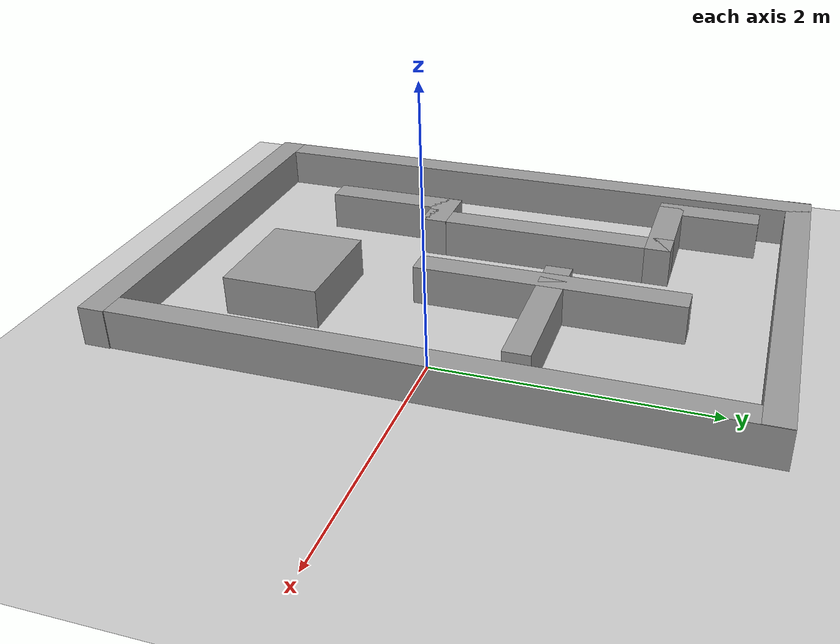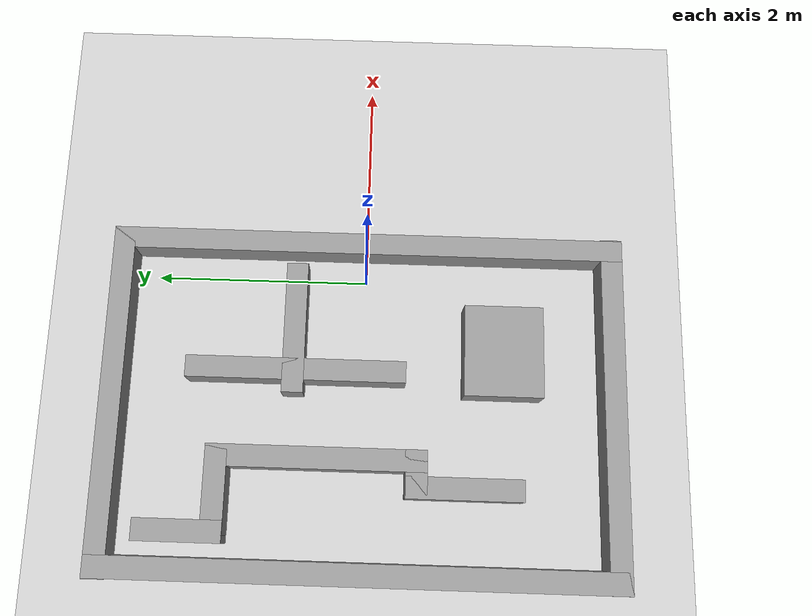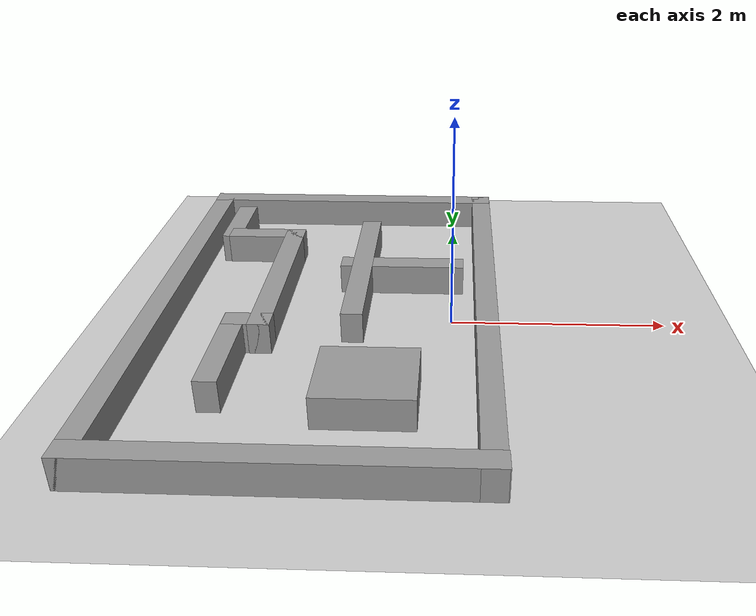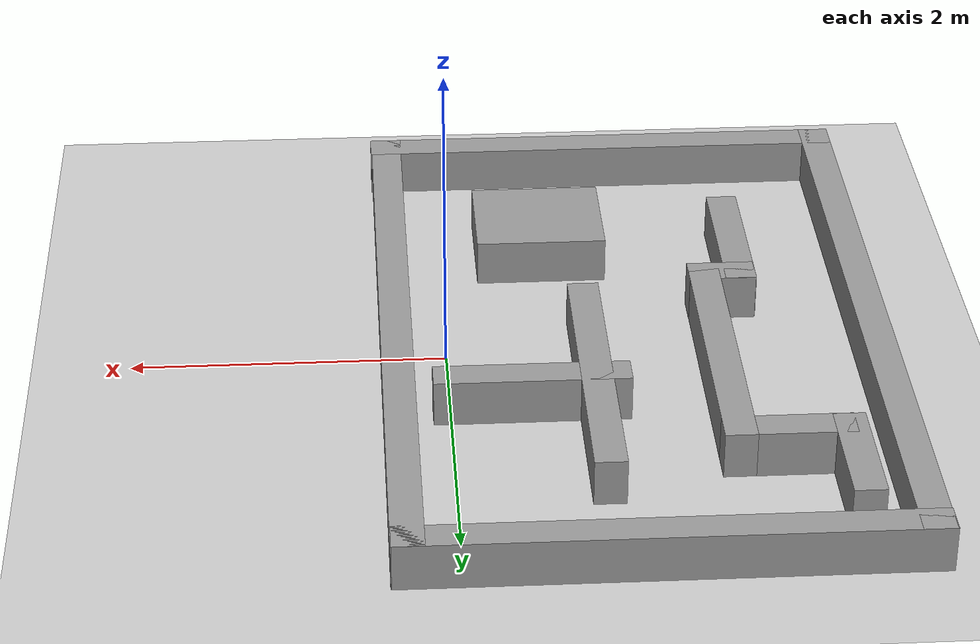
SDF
<sdf version='1.4'>
  <world name='default'>
    <!-- A global light source -->
    <include>
      <uri>model://sun</uri>
    </include>

    <!-- A ground plane -->
    <include>
      <uri>model://ground_plane</uri>
    </include>

    <physics type="ode">
      <real_time_update_rate>1000.0</real_time_update_rate>
      <max_step_size>0.001</max_step_size>
      <real_time_factor>1</real_time_factor>
      <ode>
        <solver>
          <type>quick</type>
          <iters>150</iters>
          <precon_iters>0</precon_iters>
          <sor>1.400000</sor>
          <use_dynamic_moi_rescaling>1</use_dynamic_moi_rescaling>
        </solver>
        <constraints>
          <cfm>0.00001</cfm>
          <erp>0.2</erp>
          <contact_max_correcting_vel>2000.000000</contact_max_correcting_vel>
          <contact_surface_layer>0.01000</contact_surface_layer>
        </constraints>
      </ode>
    </physics>

    <include>
      <uri>model://FinalMaze_Easier</uri>
    </include>

    <scene>
      <ambient>0.4 0.4 0.4 1</ambient>
      <background>0.7 0.7 0.7 1</background>
      <shadows>true</shadows>
    </scene>

    <gui fullscreen='0'>
      <camera name='user_camera'>
        <pose>0.8 0.0 12.0 0 1.5708 0</pose>
        <view_controller>orbit</view_controller>
      </camera>
    </gui>
  </world>
</sdf>

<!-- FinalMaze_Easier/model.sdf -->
<sdf version='1.6'>
  <model name='FinalMaze_Easier'>
    <link name='Wall_0'>
      <pose frame=''>-1.18759 -2.3 0 0 -0 0</pose>
      <self_collide>0</self_collide>
      <enable_wind>0</enable_wind>
      <kinematic>0</kinematic>
      <inertial>
        <inertia>
          <ixx>0</ixx>
          <ixy>0</ixy>
          <ixz>0</ixz>
          <iyy>0</iyy>
          <iyz>0</iyz>
          <izz>0</izz>
        </inertia>
        <mass>0</mass>
        <pose frame=''>0 0 0 0 -0 0</pose>
      </inertial>
      <visual name='Wall_0_Visual'>
        <pose frame=''>0 0 0.15 0 -0 0</pose>
        <geometry>
          <box>
            <size>3.22562 0.2 0.3</size>
          </box>
        </geometry>
        <material>
          <script>
            <uri>file://media/materials/scripts/gazebo.material</uri>
            <name>Gazebo/Grey</name>
          </script>
          <ambient>1 1 1 1</ambient>
        </material>
        <transparency>0</transparency>
        <cast_shadows>1</cast_shadows>
      </visual>
      <collision name='Wall_0_Collision'>
        <laser_retro>0</laser_retro>
        <max_contacts>10</max_contacts>
        <pose frame=''>0 0 0.15 0 -0 0</pose>
        <geometry>
          <box>
            <size>3.22562 0.2 0.3</size>
          </box>
        </geometry>
        <surface>
          <friction>
            <ode>
              <mu>1</mu>
              <mu2>1</mu2>
              <fdir1>0 0 0</fdir1>
              <slip1>0</slip1>
              <slip2>0</slip2>
            </ode>
            <torsional>
              <coefficient>1</coefficient>
              <patch_radius>0</patch_radius>
              <surface_radius>0</surface_radius>
              <use_patch_radius>1</use_patch_radius>
              <ode>
                <slip>0</slip>
              </ode>
            </torsional>
          </friction>
          <bounce>
            <restitution_coefficient>0</restitution_coefficient>
            <threshold>1e+06</threshold>
          </bounce>
          <contact>
            <collide_without_contact>0</collide_without_contact>
            <collide_without_contact_bitmask>1</collide_without_contact_bitmask>
            <collide_bitmask>1</collide_bitmask>
            <ode>
              <soft_cfm>0</soft_cfm>
              <soft_erp>0.2</soft_erp>
              <kp>1e+13</kp>
              <kd>1</kd>
              <max_vel>0.01</max_vel>
              <min_depth>0</min_depth>
            </ode>
            <bullet>
              <split_impulse>1</split_impulse>
              <split_impulse_penetration_threshold>-0.01</split_impulse_penetration_threshold>
              <soft_cfm>0</soft_cfm>
              <soft_erp>0.2</soft_erp>
              <kp>1e+13</kp>
              <kd>1</kd>
            </bullet>
          </contact>
        </surface>
      </collision>
    </link>
    <link name='Wall_23'>
      <pose frame=''>-0.899999 0.624057 0 0 -0 1.5708</pose>
      <self_collide>0</self_collide>
      <enable_wind>0</enable_wind>
      <kinematic>0</kinematic>
      <inertial>
        <inertia>
          <ixx>0</ixx>
          <ixy>0</ixy>
          <ixz>0</ixz>
          <iyy>0</iyy>
          <iyz>0</iyz>
          <izz>0</izz>
        </inertia>
        <mass>0</mass>
        <pose frame=''>0 0 0 0 -0 0</pose>
      </inertial>
      <visual name='Wall_23_Visual'>
        <pose frame=''>0 0 0.15 0 -0 0</pose>
        <geometry>
          <box>
            <size>2.02684 0.2 0.3</size>
          </box>
        </geometry>
        <material>
          <script>
            <uri>file://media/materials/scripts/gazebo.material</uri>
            <name>Gazebo/Grey</name>
          </script>
          <ambient>1 1 1 1</ambient>
        </material>
        <transparency>0</transparency>
        <cast_shadows>1</cast_shadows>
      </visual>
      <collision name='Wall_23_Collision'>
        <laser_retro>0</laser_retro>
        <max_contacts>10</max_contacts>
        <pose frame=''>0 0 0.15 0 -0 0</pose>
        <geometry>
          <box>
            <size>2.02684 0.2 0.3</size>
          </box>
        </geometry>
        <surface>
          <friction>
            <ode>
              <mu>1</mu>
              <mu2>1</mu2>
              <fdir1>0 0 0</fdir1>
              <slip1>0</slip1>
              <slip2>0</slip2>
            </ode>
            <torsional>
              <coefficient>1</coefficient>
              <patch_radius>0</patch_radius>
              <surface_radius>0</surface_radius>
              <use_patch_radius>1</use_patch_radius>
              <ode>
                <slip>0</slip>
              </ode>
            </torsional>
          </friction>
          <bounce>
            <restitution_coefficient>0</restitution_coefficient>
            <threshold>1e+06</threshold>
          </bounce>
          <contact>
            <collide_without_contact>0</collide_without_contact>
            <collide_without_contact_bitmask>1</collide_without_contact_bitmask>
            <collide_bitmask>1</collide_bitmask>
            <ode>
              <soft_cfm>0</soft_cfm>
              <soft_erp>0.2</soft_erp>
              <kp>1e+13</kp>
              <kd>1</kd>
              <max_vel>0.01</max_vel>
              <min_depth>0</min_depth>
            </ode>
            <bullet>
              <split_impulse>1</split_impulse>
              <split_impulse_penetration_threshold>-0.01</split_impulse_penetration_threshold>
              <soft_cfm>0</soft_cfm>
              <soft_erp>0.2</soft_erp>
              <kp>1e+13</kp>
              <kd>1</kd>
            </bullet>
          </contact>
        </surface>
      </collision>
    </link>
    <link name='Wall_24'>
      <pose frame=''>-0.504051 0.648135 0 0 -0 0</pose>
      <self_collide>0</self_collide>
      <enable_wind>0</enable_wind>
      <kinematic>0</kinematic>
      <inertial>
        <inertia>
          <ixx>0</ixx>
          <ixy>0</ixy>
          <ixz>0</ixz>
          <iyy>0</iyy>
          <iyz>0</iyz>
          <izz>0</izz>
        </inertia>
        <mass>0</mass>
        <pose frame=''>0 0 0 0 -0 0</pose>
      </inertial>
      <visual name='Wall_24_Visual'>
        <pose frame=''>0 0 0.15 0 -0 0</pose>
        <geometry>
          <box>
            <size>1.22331 0.2 0.3</size>
          </box>
        </geometry>
        <material>
          <script>
            <uri>file://media/materials/scripts/gazebo.material</uri>
            <name>Gazebo/Grey</name>
          </script>
          <ambient>1 1 1 1</ambient>
        </material>
        <transparency>0</transparency>
        <cast_shadows>1</cast_shadows>
      </visual>
      <collision name='Wall_24_Collision'>
        <laser_retro>0</laser_retro>
        <max_contacts>10</max_contacts>
        <pose frame=''>0 0 0.15 0 -0 0</pose>
        <geometry>
          <box>
            <size>1.22331 0.2 0.3</size>
          </box>
        </geometry>
        <surface>
          <friction>
            <ode>
              <mu>1</mu>
              <mu2>1</mu2>
              <fdir1>0 0 0</fdir1>
              <slip1>0</slip1>
              <slip2>0</slip2>
            </ode>
            <torsional>
              <coefficient>1</coefficient>
              <patch_radius>0</patch_radius>
              <surface_radius>0</surface_radius>
              <use_patch_radius>1</use_patch_radius>
              <ode>
                <slip>0</slip>
              </ode>
            </torsional>
          </friction>
          <bounce>
            <restitution_coefficient>0</restitution_coefficient>
            <threshold>1e+06</threshold>
          </bounce>
          <contact>
            <collide_without_contact>0</collide_without_contact>
            <collide_without_contact_bitmask>1</collide_without_contact_bitmask>
            <collide_bitmask>1</collide_bitmask>
            <ode>
              <soft_cfm>0</soft_cfm>
              <soft_erp>0.2</soft_erp>
              <kp>1e+13</kp>
              <kd>1</kd>
              <max_vel>0.01</max_vel>
              <min_depth>0</min_depth>
            </ode>
            <bullet>
              <split_impulse>1</split_impulse>
              <split_impulse_penetration_threshold>-0.01</split_impulse_penetration_threshold>
              <soft_cfm>0</soft_cfm>
              <soft_erp>0.2</soft_erp>
              <kp>1e+13</kp>
              <kd>1</kd>
            </bullet>
          </contact>
        </surface>
      </collision>
    </link>
    <link name='Wall_27'>
      <pose frame=''>-1.81438 -0.5 0 0 -0 0</pose>
      <self_collide>0</self_collide>
      <enable_wind>0</enable_wind>
      <kinematic>0</kinematic>
      <inertial>
        <inertia>
          <ixx>0</ixx>
          <ixy>0</ixy>
          <ixz>0</ixz>
          <iyy>0</iyy>
          <iyz>0</iyz>
          <izz>0</izz>
        </inertia>
        <mass>0</mass>
        <pose frame=''>0 0 0 0 -0 0</pose>
      </inertial>
      <visual name='Wall_27_Visual'>
        <pose frame=''>0 0 0.15 0 -0 0</pose>
        <geometry>
          <box>
            <size>0.431142 0.2 0.3</size>
          </box>
        </geometry>
        <material>
          <script>
            <uri>file://media/materials/scripts/gazebo.material</uri>
            <name>Gazebo/Grey</name>
          </script>
          <ambient>1 1 1 1</ambient>
        </material>
        <transparency>0</transparency>
        <cast_shadows>1</cast_shadows>
      </visual>
      <collision name='Wall_27_Collision'>
        <laser_retro>0</laser_retro>
        <max_contacts>10</max_contacts>
        <pose frame=''>0 0 0.15 0 -0 0</pose>
        <geometry>
          <box>
            <size>0.431142 0.2 0.3</size>
          </box>
        </geometry>
        <surface>
          <friction>
            <ode>
              <mu>1</mu>
              <mu2>1</mu2>
              <fdir1>0 0 0</fdir1>
              <slip1>0</slip1>
              <slip2>0</slip2>
            </ode>
            <torsional>
              <coefficient>1</coefficient>
              <patch_radius>0</patch_radius>
              <surface_radius>0</surface_radius>
              <use_patch_radius>1</use_patch_radius>
              <ode>
                <slip>0</slip>
              </ode>
            </torsional>
          </friction>
          <bounce>
            <restitution_coefficient>0</restitution_coefficient>
            <threshold>1e+06</threshold>
          </bounce>
          <contact>
            <collide_without_contact>0</collide_without_contact>
            <collide_without_contact_bitmask>1</collide_without_contact_bitmask>
            <collide_bitmask>1</collide_bitmask>
            <ode>
              <soft_cfm>0</soft_cfm>
              <soft_erp>0.2</soft_erp>
              <kp>1e+13</kp>
              <kd>1</kd>
              <max_vel>0.01</max_vel>
              <min_depth>0</min_depth>
            </ode>
            <bullet>
              <split_impulse>1</split_impulse>
              <split_impulse_penetration_threshold>-0.01</split_impulse_penetration_threshold>
              <soft_cfm>0</soft_cfm>
              <soft_erp>0.2</soft_erp>
              <kp>1e+13</kp>
              <kd>1</kd>
            </bullet>
          </contact>
        </surface>
      </collision>
    </link>
    <link name='Wall_28'>
      <pose frame=''>-1.7 0.4 0 0 -0 1.5708</pose>
      <self_collide>0</self_collide>
      <enable_wind>0</enable_wind>
      <kinematic>0</kinematic>
      <visual name='Wall_28_Visual'>
        <pose frame=''>0 0 0.15 0 -0 0</pose>
        <geometry>
          <box>
            <size>2 0.2 0.3</size>
          </box>
        </geometry>
        <material>
          <script>
            <uri>file://media/materials/scripts/gazebo.material</uri>
            <name>Gazebo/Grey</name>
          </script>
          <ambient>1 1 1 1</ambient>
        </material>
        <transparency>0</transparency>
        <cast_shadows>1</cast_shadows>
      </visual>
      <collision name='Wall_28_Collision'>
        <laser_retro>0</laser_retro>
        <max_contacts>10</max_contacts>
        <pose frame=''>0 0 0.15 0 -0 0</pose>
        <geometry>
          <box>
            <size>2 0.2 0.3</size>
          </box>
        </geometry>
        <surface>
          <friction>
            <ode>
              <mu>1</mu>
              <mu2>1</mu2>
              <fdir1>0 0 0</fdir1>
              <slip1>0</slip1>
              <slip2>0</slip2>
            </ode>
            <torsional>
              <coefficient>1</coefficient>
              <patch_radius>0</patch_radius>
              <surface_radius>0</surface_radius>
              <use_patch_radius>1</use_patch_radius>
              <ode>
                <slip>0</slip>
              </ode>
            </torsional>
          </friction>
          <bounce>
            <restitution_coefficient>0</restitution_coefficient>
            <threshold>1e+06</threshold>
          </bounce>
          <contact>
            <collide_without_contact>0</collide_without_contact>
            <collide_without_contact_bitmask>1</collide_without_contact_bitmask>
            <collide_bitmask>1</collide_bitmask>
            <ode>
              <soft_cfm>0</soft_cfm>
              <soft_erp>0.2</soft_erp>
              <kp>1e+13</kp>
              <kd>1</kd>
              <max_vel>0.01</max_vel>
              <min_depth>0</min_depth>
            </ode>
            <bullet>
              <split_impulse>1</split_impulse>
              <split_impulse_penetration_threshold>-0.01</split_impulse_penetration_threshold>
              <soft_cfm>0</soft_cfm>
              <soft_erp>0.2</soft_erp>
              <kp>1e+13</kp>
              <kd>1</kd>
            </bullet>
          </contact>
        </surface>
      </collision>
    </link>
    <link name='Wall_29'>
      <pose frame=''>-2 1.3 0 0 -0 3.14159</pose>
      <self_collide>0</self_collide>
      <enable_wind>0</enable_wind>
      <kinematic>0</kinematic>
      <visual name='Wall_29_Visual'>
        <pose frame=''>0 0 0.15 0 -0 0</pose>
        <geometry>
          <box>
            <size>0.8 0.2 0.3</size>
          </box>
        </geometry>
        <material>
          <script>
            <uri>file://media/materials/scripts/gazebo.material</uri>
            <name>Gazebo/Grey</name>
          </script>
          <ambient>1 1 1 1</ambient>
        </material>
        <transparency>0</transparency>
        <cast_shadows>1</cast_shadows>
      </visual>
      <collision name='Wall_29_Collision'>
        <laser_retro>0</laser_retro>
        <max_contacts>10</max_contacts>
        <pose frame=''>0 0 0.15 0 -0 0</pose>
        <geometry>
          <box>
            <size>0.8 0.2 0.3</size>
          </box>
        </geometry>
        <surface>
          <friction>
            <ode>
              <mu>1</mu>
              <mu2>1</mu2>
              <fdir1>0 0 0</fdir1>
              <slip1>0</slip1>
              <slip2>0</slip2>
            </ode>
            <torsional>
              <coefficient>1</coefficient>
              <patch_radius>0</patch_radius>
              <surface_radius>0</surface_radius>
              <use_patch_radius>1</use_patch_radius>
              <ode>
                <slip>0</slip>
              </ode>
            </torsional>
          </friction>
          <bounce>
            <restitution_coefficient>0</restitution_coefficient>
            <threshold>1e+06</threshold>
          </bounce>
          <contact>
            <collide_without_contact>0</collide_without_contact>
            <collide_without_contact_bitmask>1</collide_without_contact_bitmask>
            <collide_bitmask>1</collide_bitmask>
            <ode>
              <soft_cfm>0</soft_cfm>
              <soft_erp>0.2</soft_erp>
              <kp>1e+13</kp>
              <kd>1</kd>
              <max_vel>0.01</max_vel>
              <min_depth>0</min_depth>
            </ode>
            <bullet>
              <split_impulse>1</split_impulse>
              <split_impulse_penetration_threshold>-0.01</split_impulse_penetration_threshold>
              <soft_cfm>0</soft_cfm>
              <soft_erp>0.2</soft_erp>
              <kp>1e+13</kp>
              <kd>1</kd>
            </bullet>
          </contact>
        </surface>
      </collision>
    </link>
    <link name='Wall_3'>
      <pose frame=''>0.318065 -9e-06 0 0 -0 1.5708</pose>
      <self_collide>0</self_collide>
      <enable_wind>0</enable_wind>
      <kinematic>0</kinematic>
      <visual name='Wall_3_Visual'>
        <pose frame=''>0 0 0.15 0 -0 0</pose>
        <geometry>
          <box>
            <size>4.8 0.2 0.3</size>
          </box>
        </geometry>
        <material>
          <script>
            <uri>file://media/materials/scripts/gazebo.material</uri>
            <name>Gazebo/Grey</name>
          </script>
          <ambient>1 1 1 1</ambient>
        </material>
        <transparency>0</transparency>
        <cast_shadows>1</cast_shadows>
      </visual>
      <collision name='Wall_3_Collision'>
        <laser_retro>0</laser_retro>
        <max_contacts>10</max_contacts>
        <pose frame=''>0 0 0.15 0 -0 0</pose>
        <geometry>
          <box>
            <size>4.8 0.2 0.3</size>
          </box>
        </geometry>
        <surface>
          <friction>
            <ode>
              <mu>1</mu>
              <mu2>1</mu2>
              <fdir1>0 0 0</fdir1>
              <slip1>0</slip1>
              <slip2>0</slip2>
            </ode>
            <torsional>
              <coefficient>1</coefficient>
              <patch_radius>0</patch_radius>
              <surface_radius>0</surface_radius>
              <use_patch_radius>1</use_patch_radius>
              <ode>
                <slip>0</slip>
              </ode>
            </torsional>
          </friction>
          <bounce>
            <restitution_coefficient>0</restitution_coefficient>
            <threshold>1e+06</threshold>
          </bounce>
          <contact>
            <collide_without_contact>0</collide_without_contact>
            <collide_without_contact_bitmask>1</collide_without_contact_bitmask>
            <collide_bitmask>1</collide_bitmask>
            <ode>
              <soft_cfm>0</soft_cfm>
              <soft_erp>0.2</soft_erp>
              <kp>1e+13</kp>
              <kd>1</kd>
              <max_vel>0.01</max_vel>
              <min_depth>0</min_depth>
            </ode>
            <bullet>
              <split_impulse>1</split_impulse>
              <split_impulse_penetration_threshold>-0.01</split_impulse_penetration_threshold>
              <soft_cfm>0</soft_cfm>
              <soft_erp>0.2</soft_erp>
              <kp>1e+13</kp>
              <kd>1</kd>
            </bullet>
          </contact>
        </surface>
      </collision>
    </link>
    <link name='Wall_30'>
      <pose frame=''>-2.37101 1.60269 0 0 -0 1.5708</pose>
      <self_collide>0</self_collide>
      <enable_wind>0</enable_wind>
      <kinematic>0</kinematic>
      <visual name='Wall_30_Visual'>
        <pose frame=''>0 0 0.15 0 -0 0</pose>
        <geometry>
          <box>
            <size>0.8 0.2 0.3</size>
          </box>
        </geometry>
        <material>
          <script>
            <uri>file://media/materials/scripts/gazebo.material</uri>
            <name>Gazebo/Grey</name>
          </script>
          <ambient>1 1 1 1</ambient>
        </material>
        <transparency>0</transparency>
        <cast_shadows>1</cast_shadows>
      </visual>
      <collision name='Wall_30_Collision'>
        <laser_retro>0</laser_retro>
        <max_contacts>10</max_contacts>
        <pose frame=''>0 0 0.15 0 -0 0</pose>
        <geometry>
          <box>
            <size>0.8 0.2 0.3</size>
          </box>
        </geometry>
        <surface>
          <friction>
            <ode>
              <mu>1</mu>
              <mu2>1</mu2>
              <fdir1>0 0 0</fdir1>
              <slip1>0</slip1>
              <slip2>0</slip2>
            </ode>
            <torsional>
              <coefficient>1</coefficient>
              <patch_radius>0</patch_radius>
              <surface_radius>0</surface_radius>
              <use_patch_radius>1</use_patch_radius>
              <ode>
                <slip>0</slip>
              </ode>
            </torsional>
          </friction>
          <bounce>
            <restitution_coefficient>0</restitution_coefficient>
            <threshold>1e+06</threshold>
          </bounce>
          <contact>
            <collide_without_contact>0</collide_without_contact>
            <collide_without_contact_bitmask>1</collide_without_contact_bitmask>
            <collide_bitmask>1</collide_bitmask>
            <ode>
              <soft_cfm>0</soft_cfm>
              <soft_erp>0.2</soft_erp>
              <kp>1e+13</kp>
              <kd>1</kd>
              <max_vel>0.01</max_vel>
              <min_depth>0</min_depth>
            </ode>
            <bullet>
              <split_impulse>1</split_impulse>
              <split_impulse_penetration_threshold>-0.01</split_impulse_penetration_threshold>
              <soft_cfm>0</soft_cfm>
              <soft_erp>0.2</soft_erp>
              <kp>1e+13</kp>
              <kd>1</kd>
            </bullet>
          </contact>
        </surface>
      </collision>
    </link>
    <link name='Wall_34'>
      <pose frame=''>-1.93327 -0.936275 0 0 0 -1.5708</pose>
      <self_collide>0</self_collide>
      <enable_wind>0</enable_wind>
      <kinematic>0</kinematic>
      <inertial>
        <inertia>
          <ixx>0</ixx>
          <ixy>0</ixy>
          <ixz>0</ixz>
          <iyy>0</iyy>
          <iyz>0</iyz>
          <izz>0</izz>
        </inertia>
        <mass>0</mass>
        <pose frame=''>0 0 0 0 -0 0</pose>
      </inertial>
      <visual name='Wall_34_Visual'>
        <pose frame=''>0 0 0.15 0 -0 0</pose>
        <geometry>
          <box>
            <size>1.06619 0.2 0.3</size>
          </box>
        </geometry>
        <material>
          <script>
            <uri>file://media/materials/scripts/gazebo.material</uri>
            <name>Gazebo/Grey</name>
          </script>
          <ambient>1 1 1 1</ambient>
        </material>
        <transparency>0</transparency>
        <cast_shadows>1</cast_shadows>
      </visual>
      <collision name='Wall_34_Collision'>
        <laser_retro>0</laser_retro>
        <max_contacts>10</max_contacts>
        <pose frame=''>0 0 0.15 0 -0 0</pose>
        <geometry>
          <box>
            <size>1.06619 0.2 0.3</size>
          </box>
        </geometry>
        <surface>
          <friction>
            <ode>
              <mu>1</mu>
              <mu2>1</mu2>
              <fdir1>0 0 0</fdir1>
              <slip1>0</slip1>
              <slip2>0</slip2>
            </ode>
            <torsional>
              <coefficient>1</coefficient>
              <patch_radius>0</patch_radius>
              <surface_radius>0</surface_radius>
              <use_patch_radius>1</use_patch_radius>
              <ode>
                <slip>0</slip>
              </ode>
            </torsional>
          </friction>
          <bounce>
            <restitution_coefficient>0</restitution_coefficient>
            <threshold>1e+06</threshold>
          </bounce>
          <contact>
            <collide_without_contact>0</collide_without_contact>
            <collide_without_contact_bitmask>1</collide_without_contact_bitmask>
            <collide_bitmask>1</collide_bitmask>
            <ode>
              <soft_cfm>0</soft_cfm>
              <soft_erp>0.2</soft_erp>
              <kp>1e+13</kp>
              <kd>1</kd>
              <max_vel>0.01</max_vel>
              <min_depth>0</min_depth>
            </ode>
            <bullet>
              <split_impulse>1</split_impulse>
              <split_impulse_penetration_threshold>-0.01</split_impulse_penetration_threshold>
              <soft_cfm>0</soft_cfm>
              <soft_erp>0.2</soft_erp>
              <kp>1e+13</kp>
              <kd>1</kd>
            </bullet>
          </contact>
        </surface>
      </collision>
    </link>
    <link name='Wall_34_clone'>
      <pose frame=''>-0.673318 -1.28714 0 0 0 -1.5708</pose>
      <self_collide>0</self_collide>
      <enable_wind>0</enable_wind>
      <kinematic>0</kinematic>
      <inertial>
        <inertia>
          <ixx>0</ixx>
          <ixy>0</ixy>
          <ixz>0</ixz>
          <iyy>0</iyy>
          <iyz>0</iyz>
          <izz>0</izz>
        </inertia>
        <mass>0</mass>
        <pose frame=''>0 0 0 0 -0 0</pose>
      </inertial>
      <visual name='Wall_34_Visual'>
        <pose frame=''>0 0 0.15 0 -0 0</pose>
        <geometry>
          <box>
            <size>0.729208 0.84689 0.3</size>
          </box>
        </geometry>
        <material>
          <script>
            <uri>file://media/materials/scripts/gazebo.material</uri>
            <name>Gazebo/Grey</name>
          </script>
          <ambient>1 1 1 1</ambient>
          <shader type='pixel'/>
        </material>
        <transparency>0</transparency>
        <cast_shadows>1</cast_shadows>
      </visual>
      <collision name='Wall_34_Collision'>
        <laser_retro>0</laser_retro>
        <max_contacts>10</max_contacts>
        <pose frame=''>0 0 0.15 0 -0 0</pose>
        <geometry>
          <box>
            <size>0.729208 0.84689 0.3</size>
          </box>
        </geometry>
        <surface>
          <friction>
            <ode>
              <mu>1</mu>
              <mu2>1</mu2>
              <fdir1>0 0 0</fdir1>
              <slip1>0</slip1>
              <slip2>0</slip2>
            </ode>
            <torsional>
              <coefficient>1</coefficient>
              <patch_radius>0</patch_radius>
              <surface_radius>0</surface_radius>
              <use_patch_radius>1</use_patch_radius>
              <ode>
                <slip>0</slip>
              </ode>
            </torsional>
          </friction>
          <bounce>
            <restitution_coefficient>0</restitution_coefficient>
            <threshold>1e+06</threshold>
          </bounce>
          <contact>
            <collide_without_contact>0</collide_without_contact>
            <collide_without_contact_bitmask>1</collide_without_contact_bitmask>
            <collide_bitmask>1</collide_bitmask>
            <ode>
              <soft_cfm>0</soft_cfm>
              <soft_erp>0.2</soft_erp>
              <kp>1e+13</kp>
              <kd>1</kd>
              <max_vel>0.01</max_vel>
              <min_depth>0</min_depth>
            </ode>
            <bullet>
              <split_impulse>1</split_impulse>
              <split_impulse_penetration_threshold>-0.01</split_impulse_penetration_threshold>
              <soft_cfm>0</soft_cfm>
              <soft_erp>0.2</soft_erp>
              <kp>1e+13</kp>
              <kd>1</kd>
            </bullet>
          </contact>
        </surface>
      </collision>
    </link>
    <link name='Wall_5'>
      <pose frame=''>-1.19576 2.3 0 0 -0 3.14159</pose>
      <self_collide>0</self_collide>
      <enable_wind>0</enable_wind>
      <kinematic>0</kinematic>
      <inertial>
        <inertia>
          <ixx>0</ixx>
          <ixy>0</ixy>
          <ixz>0</ixz>
          <iyy>0</iyy>
          <iyz>0</iyz>
          <izz>0</izz>
        </inertia>
        <mass>0</mass>
        <pose frame=''>0 0 0 0 -0 0</pose>
      </inertial>
      <visual name='Wall_5_Visual'>
        <pose frame=''>0 0 0.15 0 -0 0</pose>
        <geometry>
          <box>
            <size>3.21847 0.2 0.3</size>
          </box>
        </geometry>
        <material>
          <script>
            <uri>file://media/materials/scripts/gazebo.material</uri>
            <name>Gazebo/Grey</name>
          </script>
          <ambient>1 1 1 1</ambient>
        </material>
        <transparency>0</transparency>
        <cast_shadows>1</cast_shadows>
      </visual>
      <collision name='Wall_5_Collision'>
        <laser_retro>0</laser_retro>
        <max_contacts>10</max_contacts>
        <pose frame=''>0 0 0.15 0 -0 0</pose>
        <geometry>
          <box>
            <size>3.21847 0.2 0.3</size>
          </box>
        </geometry>
        <surface>
          <friction>
            <ode>
              <mu>1</mu>
              <mu2>1</mu2>
              <fdir1>0 0 0</fdir1>
              <slip1>0</slip1>
              <slip2>0</slip2>
            </ode>
            <torsional>
              <coefficient>1</coefficient>
              <patch_radius>0</patch_radius>
              <surface_radius>0</surface_radius>
              <use_patch_radius>1</use_patch_radius>
              <ode>
                <slip>0</slip>
              </ode>
            </torsional>
          </friction>
          <bounce>
            <restitution_coefficient>0</restitution_coefficient>
            <threshold>1e+06</threshold>
          </bounce>
          <contact>
            <collide_without_contact>0</collide_without_contact>
            <collide_without_contact_bitmask>1</collide_without_contact_bitmask>
            <collide_bitmask>1</collide_bitmask>
            <ode>
              <soft_cfm>0</soft_cfm>
              <soft_erp>0.2</soft_erp>
              <kp>1e+13</kp>
              <kd>1</kd>
              <max_vel>0.01</max_vel>
              <min_depth>0</min_depth>
            </ode>
            <bullet>
              <split_impulse>1</split_impulse>
              <split_impulse_penetration_threshold>-0.01</split_impulse_penetration_threshold>
              <soft_cfm>0</soft_cfm>
              <soft_erp>0.2</soft_erp>
              <kp>1e+13</kp>
              <kd>1</kd>
            </bullet>
          </contact>
        </surface>
      </collision>
    </link>
    <link name='Wall_7'>
      <pose frame=''>-2.7 0 0 0 -0 1.5708</pose>
      <self_collide>0</self_collide>
      <enable_wind>0</enable_wind>
      <kinematic>0</kinematic>
      <gravity>1</gravity>
      <inertial>
        <mass>1</mass>
        <pose frame=''>0 0 0 0 -0 0</pose>
        <inertia>
          <ixx>1</ixx>
          <ixy>0</ixy>
          <ixz>0</ixz>
          <iyy>1</iyy>
          <iyz>0</iyz>
          <izz>1</izz>
        </inertia>
      </inertial>
      <visual name='Wall_7_Visual'>
        <pose frame=''>0 0 0.15 0 -0 0</pose>
        <geometry>
          <box>
            <size>4.8 0.2 0.3</size>
          </box>
        </geometry>
        <material>
          <script>
            <uri>file://media/materials/scripts/gazebo.material</uri>
            <name>Gazebo/Grey</name>
          </script>
          <ambient>1 1 1 1</ambient>
          <shader type='vertex'>
            <normal_map>__default__</normal_map>
          </shader>
        </material>
        <transparency>0</transparency>
        <cast_shadows>1</cast_shadows>
      </visual>
      <collision name='Wall_7_Collision'>
        <laser_retro>0</laser_retro>
        <max_contacts>10</max_contacts>
        <pose frame=''>0 0 0.15 0 -0 0</pose>
        <geometry>
          <box>
            <size>4.8 0.2 0.3</size>
          </box>
        </geometry>
        <surface>
          <friction>
            <ode>
              <mu>1</mu>
              <mu2>1</mu2>
              <fdir1>0 0 0</fdir1>
              <slip1>0</slip1>
              <slip2>0</slip2>
            </ode>
            <torsional>
              <coefficient>1</coefficient>
              <patch_radius>0</patch_radius>
              <surface_radius>0</surface_radius>
              <use_patch_radius>1</use_patch_radius>
              <ode>
                <slip>0</slip>
              </ode>
            </torsional>
          </friction>
          <bounce>
            <restitution_coefficient>0</restitution_coefficient>
            <threshold>1e+06</threshold>
          </bounce>
          <contact>
            <collide_without_contact>0</collide_without_contact>
            <collide_without_contact_bitmask>1</collide_without_contact_bitmask>
            <collide_bitmask>1</collide_bitmask>
            <ode>
              <soft_cfm>0</soft_cfm>
              <soft_erp>0.2</soft_erp>
              <kp>1e+13</kp>
              <kd>1</kd>
              <max_vel>0.01</max_vel>
              <min_depth>0</min_depth>
            </ode>
            <bullet>
              <split_impulse>1</split_impulse>
              <split_impulse_penetration_threshold>-0.01</split_impulse_penetration_threshold>
              <soft_cfm>0</soft_cfm>
              <soft_erp>0.2</soft_erp>
              <kp>1e+13</kp>
              <kd>1</kd>
            </bullet>
          </contact>
        </surface>
      </collision>
    </link>
    <static>1</static>
    <allow_auto_disable>1</allow_auto_disable>
  </model>
</sdf>
